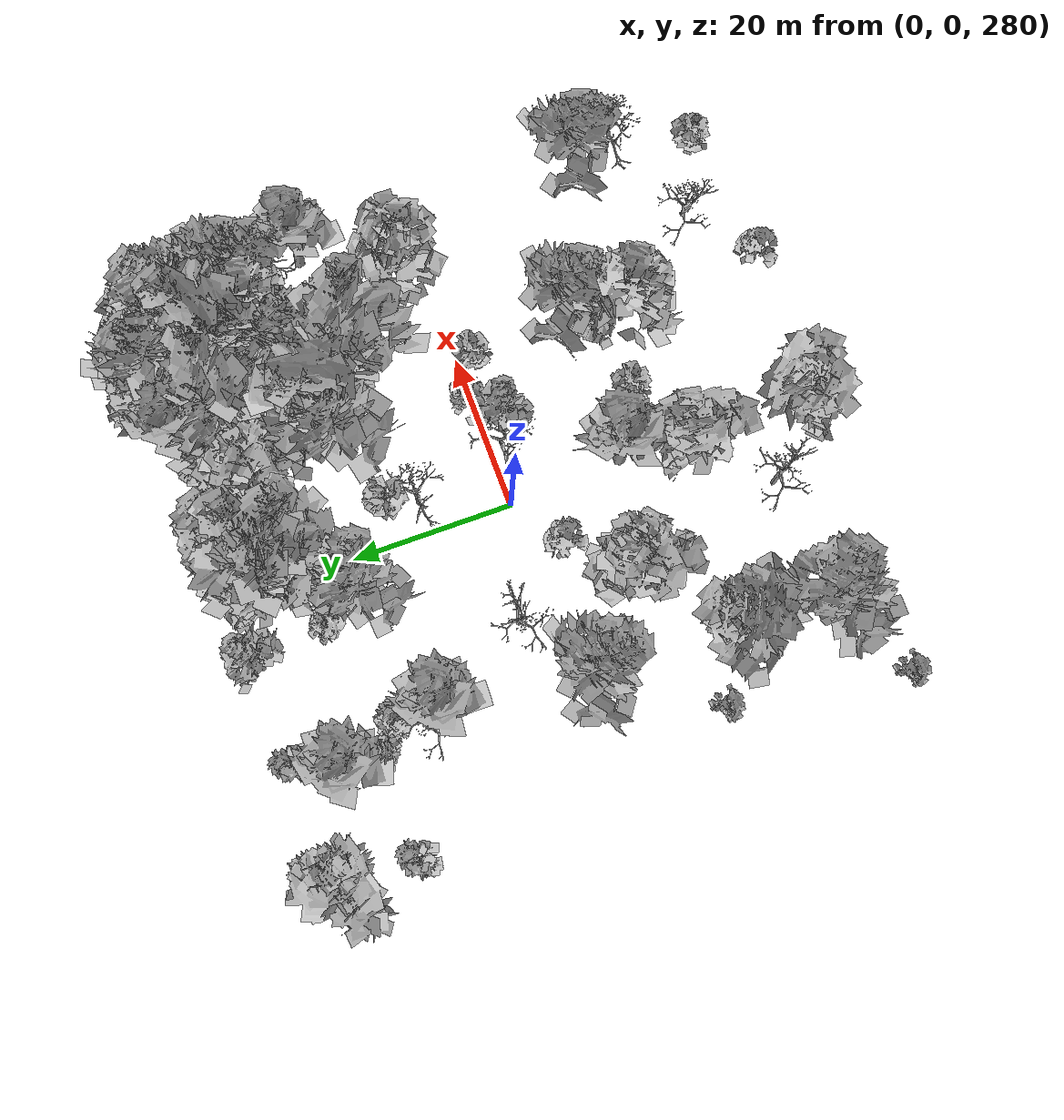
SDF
<sdf version="1.6">
 <world name="default">
  <light name="sun" type="directional">
   <pose>0 0 10 0 -0 0</pose>
   <diffuse>0.8 0.8 0.8 1</diffuse>
   <specular>0.2 0.2 0.2 1</specular>
   <attenuation>
    <range>1000</range>
    <constant>0.9</constant>
    <linear>0.01</linear>
    <quadratic>0.001</quadratic>
   </attenuation>
   <direction>-0.5 0.1 -0.9</direction>
  </light>
  <scene>
   <sky><clouds><speed>12</speed></clouds></sky>
   <ambient>0.4 0.4 0.4 1</ambient>
   <background>0.7 0.7 0.7 1</background>
   <shadows>1</shadows>
  </scene>
  <spherical_coordinates>
   <surface_model>EARTH_WGS84</surface_model>
   <latitude_deg>47.3977</latitude_deg>
   <longitude_deg>8.54559</longitude_deg>
   <elevation>0</elevation>
   <heading_deg>0</heading_deg>
  </spherical_coordinates>
  <physics name="default_physics" default="0" type="ode">
   <ode>
    <solver>
     <type>quick</type>
     <iters>100</iters>
     <sor>1.3</sor>
     <use_dynamic_moi_rescaling>0</use_dynamic_moi_rescaling>
    </solver>
    <constraints>
     <cfm>0</cfm>
     <erp>0.2</erp>
     <contact_max_correcting_vel>100</contact_max_correcting_vel>
     <contact_surface_layer>0.001</contact_surface_layer>
    </constraints>
   </ode>
   <max_step_size>0.002</max_step_size>
   <real_time_factor>1</real_time_factor>
   <real_time_update_rate>500</real_time_update_rate>
  </physics>
  <gravity>0 0 -9.8</gravity>
  <magnetic_field>6e-06 2.3e-05 -4.2e-05</magnetic_field>
  <atmosphere type="adiabatic"/>
  <model name="my_mesh0">
   <pose>35.2814 24.2309 286.199 0 0 -1.35266</pose>
   <static>1</static>
   <link name="body">
    <visual name="visual">
     <geometry><mesh><uri>model://trees/8.dae</uri><scale>1 1 1</scale></mesh></geometry>
    </visual>
    <collision name="collision">
     <geometry><mesh><uri>model://trees/8.dae</uri><scale>1 1 1</scale></mesh></geometry>
    </collision>
   </link>
  </model>
  <model name="my_mesh1">
   <pose>25.9893 24.547 286.061 0 0 -1.36312</pose>
   <static>1</static>
   <link name="body">
    <visual name="visual">
     <geometry><mesh><uri>model://trees/11.dae</uri><scale>1 1 1</scale></mesh></geometry>
    </visual>
    <collision name="collision">
     <geometry><mesh><uri>model://trees/11.dae</uri><scale>1 1 1</scale></mesh></geometry>
    </collision>
   </link>
  </model>
  <model name="my_mesh2">
   <pose>26.6947 33.3691 284.907 0 0 -0.374484</pose>
   <static>1</static>
   <link name="body">
    <visual name="visual">
     <geometry><mesh><uri>model://trees/9.dae</uri><scale>1 1 1</scale></mesh></geometry>
    </visual>
    <collision name="collision">
     <geometry><mesh><uri>model://trees/9.dae</uri><scale>1 1 1</scale></mesh></geometry>
    </collision>
   </link>
  </model>
  <model name="my_mesh3">
   <pose>35.8735 35.6656 284.813 0 0 -0.943137</pose>
   <static>1</static>
   <link name="body">
    <visual name="visual">
     <geometry><mesh><uri>model://trees/3.dae</uri><scale>1 1 1</scale></mesh></geometry>
    </visual>
    <collision name="collision">
     <geometry><mesh><uri>model://trees/3.dae</uri><scale>1 1 1</scale></mesh></geometry>
    </collision>
   </link>
  </model>
  <model name="my_mesh4">
   <pose>29.9982 26.3582 285.894 0 0 -0.917644</pose>
   <static>1</static>
   <link name="body">
    <visual name="visual">
     <geometry><mesh><uri>model://trees/16.dae</uri><scale>1 1 1</scale></mesh></geometry>
    </visual>
    <collision name="collision">
     <geometry><mesh><uri>model://trees/16.dae</uri><scale>1 1 1</scale></mesh></geometry>
    </collision>
   </link>
  </model>
  <model name="my_mesh5">
   <pose>35.5648 21.4159 286.592 0 0 -0.395846</pose>
   <static>1</static>
   <link name="body">
    <visual name="visual">
     <geometry><mesh><uri>model://trees/7.dae</uri><scale>1 1 1</scale></mesh></geometry>
    </visual>
    <collision name="collision">
     <geometry><mesh><uri>model://trees/7.dae</uri><scale>1 1 1</scale></mesh></geometry>
    </collision>
   </link>
  </model>
  <model name="my_mesh6">
   <pose>22.3184 29.2605 285.302 0 0 -0.192127</pose>
   <static>1</static>
   <link name="body">
    <visual name="visual">
     <geometry><mesh><uri>model://trees/5.dae</uri><scale>1 1 1</scale></mesh></geometry>
    </visual>
    <collision name="collision">
     <geometry><mesh><uri>model://trees/5.dae</uri><scale>1 1 1</scale></mesh></geometry>
    </collision>
   </link>
  </model>
  <model name="my_mesh7">
   <pose>26.6985 25.5919 285.991 0 -0 0.772254</pose>
   <static>1</static>
   <link name="body">
    <visual name="visual">
     <geometry><mesh><uri>model://trees/6.dae</uri><scale>1 1 1</scale></mesh></geometry>
    </visual>
    <collision name="collision">
     <geometry><mesh><uri>model://trees/6.dae</uri><scale>1 1 1</scale></mesh></geometry>
    </collision>
   </link>
  </model>
  <model name="my_mesh8">
   <pose>32.3951 28.3632 285.624 0 0 -1.44674</pose>
   <static>1</static>
   <link name="body">
    <visual name="visual">
     <geometry><mesh><uri>model://trees/19.dae</uri><scale>1 1 1</scale></mesh></geometry>
    </visual>
    <collision name="collision">
     <geometry><mesh><uri>model://trees/19.dae</uri><scale>1 1 1</scale></mesh></geometry>
    </collision>
   </link>
  </model>
  <model name="my_mesh9">
   <pose>27.9666 35.7768 284.551 0 -0 0.72914</pose>
   <static>1</static>
   <link name="body">
    <visual name="visual">
     <geometry><mesh><uri>model://trees/11.dae</uri><scale>1 1 1</scale></mesh></geometry>
    </visual>
    <collision name="collision">
     <geometry><mesh><uri>model://trees/11.dae</uri><scale>1 1 1</scale></mesh></geometry>
    </collision>
   </link>
  </model>
  <model name="my_mesh10">
   <pose>14.6456 33.572 284.428 0 0 -0.037381</pose>
   <static>1</static>
   <link name="body">
    <visual name="visual">
     <geometry><mesh><uri>model://trees/5.dae</uri><scale>1 1 1</scale></mesh></geometry>
    </visual>
    <collision name="collision">
     <geometry><mesh><uri>model://trees/5.dae</uri><scale>1 1 1</scale></mesh></geometry>
    </collision>
   </link>
  </model>
  <model name="my_mesh11">
   <pose>25.7968 27.4614 285.607 0 0 -1.07316</pose>
   <static>1</static>
   <link name="body">
    <visual name="visual">
     <geometry><mesh><uri>model://trees/2.dae</uri><scale>1 1 1</scale></mesh></geometry>
    </visual>
    <collision name="collision">
     <geometry><mesh><uri>model://trees/2.dae</uri><scale>1 1 1</scale></mesh></geometry>
    </collision>
   </link>
  </model>
  <model name="my_mesh12">
   <pose>19.0822 35.145 284.169 0 0 -0.471177</pose>
   <static>1</static>
   <link name="body">
    <visual name="visual">
     <geometry><mesh><uri>model://trees/11.dae</uri><scale>1 1 1</scale></mesh></geometry>
    </visual>
    <collision name="collision">
     <geometry><mesh><uri>model://trees/11.dae</uri><scale>1 1 1</scale></mesh></geometry>
    </collision>
   </link>
  </model>
  <model name="my_mesh13">
   <pose>31.7375 30.4248 285.343 0 0 -1.14008</pose>
   <static>1</static>
   <link name="body">
    <visual name="visual">
     <geometry><mesh><uri>model://trees/1.dae</uri><scale>1 1 1</scale></mesh></geometry>
    </visual>
    <collision name="collision">
     <geometry><mesh><uri>model://trees/1.dae</uri><scale>1 1 1</scale></mesh></geometry>
    </collision>
   </link>
  </model>
  <model name="my_mesh14">
   <pose>24.3657 35.463 284.503 0 0 -0.178266</pose>
   <static>1</static>
   <link name="body">
    <visual name="visual">
     <geometry><mesh><uri>model://trees/13.dae</uri><scale>1 1 1</scale></mesh></geometry>
    </visual>
    <collision name="collision">
     <geometry><mesh><uri>model://trees/13.dae</uri><scale>1 1 1</scale></mesh></geometry>
    </collision>
   </link>
  </model>
  <model name="my_mesh15">
   <pose>23.2317 33.8325 284.656 0 -0 0.222402</pose>
   <static>1</static>
   <link name="body">
    <visual name="visual">
     <geometry><mesh><uri>model://trees/5.dae</uri><scale>1 1 1</scale></mesh></geometry>
    </visual>
    <collision name="collision">
     <geometry><mesh><uri>model://trees/5.dae</uri><scale>1 1 1</scale></mesh></geometry>
    </collision>
   </link>
  </model>
  <model name="my_mesh16">
   <pose>31.6833 31.6746 285.154 0 -0 0.387667</pose>
   <static>1</static>
   <link name="body">
    <visual name="visual">
     <geometry><mesh><uri>model://trees/13.dae</uri><scale>1 1 1</scale></mesh></geometry>
    </visual>
    <collision name="collision">
     <geometry><mesh><uri>model://trees/13.dae</uri><scale>1 1 1</scale></mesh></geometry>
    </collision>
   </link>
  </model>
  <model name="my_mesh17">
   <pose>34.7851 33.9559 284.943 0 -0 0.936624</pose>
   <static>1</static>
   <link name="body">
    <visual name="visual">
     <geometry><mesh><uri>model://trees/16.dae</uri><scale>1 1 1</scale></mesh></geometry>
    </visual>
    <collision name="collision">
     <geometry><mesh><uri>model://trees/16.dae</uri><scale>1 1 1</scale></mesh></geometry>
    </collision>
   </link>
  </model>
  <model name="my_mesh18">
   <pose>32.9995 31.4053 285.268 0 -0 0.545935</pose>
   <static>1</static>
   <link name="body">
    <visual name="visual">
     <geometry><mesh><uri>model://trees/5.dae</uri><scale>1 1 1</scale></mesh></geometry>
    </visual>
    <collision name="collision">
     <geometry><mesh><uri>model://trees/5.dae</uri><scale>1 1 1</scale></mesh></geometry>
    </collision>
   </link>
  </model>
  <model name="my_mesh19">
   <pose>26.7852 30.9278 285.197 0 0 -0.397375</pose>
   <static>1</static>
   <link name="body">
    <visual name="visual">
     <geometry><mesh><uri>model://trees/4.dae</uri><scale>1 1 1</scale></mesh></geometry>
    </visual>
    <collision name="collision">
     <geometry><mesh><uri>model://trees/4.dae</uri><scale>1 1 1</scale></mesh></geometry>
    </collision>
   </link>
  </model>
  <model name="my_mesh20">
   <pose>32.1206 33.7505 284.896 0 0 -0.082549</pose>
   <static>1</static>
   <link name="body">
    <visual name="visual">
     <geometry><mesh><uri>model://trees/15.dae</uri><scale>1 1 1</scale></mesh></geometry>
    </visual>
    <collision name="collision">
     <geometry><mesh><uri>model://trees/15.dae</uri><scale>1 1 1</scale></mesh></geometry>
    </collision>
   </link>
  </model>
  <model name="my_mesh21">
   <pose>32.2169 29.3719 285.532 0 0 -0.785972</pose>
   <static>1</static>
   <link name="body">
    <visual name="visual">
     <geometry><mesh><uri>model://trees/6.dae</uri><scale>1 1 1</scale></mesh></geometry>
    </visual>
    <collision name="collision">
     <geometry><mesh><uri>model://trees/6.dae</uri><scale>1 1 1</scale></mesh></geometry>
    </collision>
   </link>
  </model>
  <model name="my_mesh22">
   <pose>21.4738 28.8327 285.059 0 -0 0.037788</pose>
   <static>1</static>
   <link name="body">
    <visual name="visual">
     <geometry><mesh><uri>model://trees/10.dae</uri><scale>1 1 1</scale></mesh></geometry>
    </visual>
    <collision name="collision">
     <geometry><mesh><uri>model://trees/10.dae</uri><scale>1 1 1</scale></mesh></geometry>
    </collision>
   </link>
  </model>
  <model name="my_mesh23">
   <pose>21.0221 23.6482 285.77 0 0 -1.32579</pose>
   <static>1</static>
   <link name="body">
    <visual name="visual">
     <geometry><mesh><uri>model://trees/2.dae</uri><scale>1 1 1</scale></mesh></geometry>
    </visual>
    <collision name="collision">
     <geometry><mesh><uri>model://trees/2.dae</uri><scale>1 1 1</scale></mesh></geometry>
    </collision>
   </link>
  </model>
  <model name="my_mesh24">
   <pose>5.14877 32.0019 284.001 0 -0 0.86252</pose>
   <static>1</static>
   <link name="body">
    <visual name="visual">
     <geometry><mesh><uri>model://trees/8.dae</uri><scale>1 1 1</scale></mesh></geometry>
    </visual>
    <collision name="collision">
     <geometry><mesh><uri>model://trees/8.dae</uri><scale>1 1 1</scale></mesh></geometry>
    </collision>
   </link>
  </model>
  <model name="my_mesh25">
   <pose>33.3918 32.006 285.177 0 -0 0.696299</pose>
   <static>1</static>
   <link name="body">
    <visual name="visual">
     <geometry><mesh><uri>model://trees/17.dae</uri><scale>1 1 1</scale></mesh></geometry>
    </visual>
    <collision name="collision">
     <geometry><mesh><uri>model://trees/17.dae</uri><scale>1 1 1</scale></mesh></geometry>
    </collision>
   </link>
  </model>
  <model name="my_mesh26">
   <pose>29.4832 22.3299 286.383 0 0 -0.591116</pose>
   <static>1</static>
   <link name="body">
    <visual name="visual">
     <geometry><mesh><uri>model://trees/15.dae</uri><scale>1 1 1</scale></mesh></geometry>
    </visual>
    <collision name="collision">
     <geometry><mesh><uri>model://trees/15.dae</uri><scale>1 1 1</scale></mesh></geometry>
    </collision>
   </link>
  </model>
  <model name="my_mesh27">
   <pose>28.7914 27.7093 285.698 0 -0 0.735018</pose>
   <static>1</static>
   <link name="body">
    <visual name="visual">
     <geometry><mesh><uri>model://trees/10.dae</uri><scale>1 1 1</scale></mesh></geometry>
    </visual>
    <collision name="collision">
     <geometry><mesh><uri>model://trees/10.dae</uri><scale>1 1 1</scale></mesh></geometry>
    </collision>
   </link>
  </model>
  <model name="my_mesh28">
   <pose>34.8715 33.0273 285.028 0 0 -1.28982</pose>
   <static>1</static>
   <link name="body">
    <visual name="visual">
     <geometry><mesh><uri>model://trees/12.dae</uri><scale>1 1 1</scale></mesh></geometry>
    </visual>
    <collision name="collision">
     <geometry><mesh><uri>model://trees/12.dae</uri><scale>1 1 1</scale></mesh></geometry>
    </collision>
   </link>
  </model>
  <model name="my_mesh29">
   <pose>26.7833 33.9996 284.806 0 0 -0.206119</pose>
   <static>1</static>
   <link name="body">
    <visual name="visual">
     <geometry><mesh><uri>model://trees/8.dae</uri><scale>1 1 1</scale></mesh></geometry>
    </visual>
    <collision name="collision">
     <geometry><mesh><uri>model://trees/8.dae</uri><scale>1 1 1</scale></mesh></geometry>
    </collision>
   </link>
  </model>
  <model name="my_mesh30">
   <pose>35.4114 33.0507 285.038 0 -0 0.967482</pose>
   <static>1</static>
   <link name="body">
    <visual name="visual">
     <geometry><mesh><uri>model://trees/7.dae</uri><scale>1 1 1</scale></mesh></geometry>
    </visual>
    <collision name="collision">
     <geometry><mesh><uri>model://trees/7.dae</uri><scale>1 1 1</scale></mesh></geometry>
    </collision>
   </link>
  </model>
  <model name="my_mesh31">
   <pose>33.7612 35.9816 284.702 0 0 -0.282736</pose>
   <static>1</static>
   <link name="body">
    <visual name="visual">
     <geometry><mesh><uri>model://trees/19.dae</uri><scale>1 1 1</scale></mesh></geometry>
    </visual>
    <collision name="collision">
     <geometry><mesh><uri>model://trees/19.dae</uri><scale>1 1 1</scale></mesh></geometry>
    </collision>
   </link>
  </model>
  <model name="my_mesh32">
   <pose>35.9414 30.5512 285.432 0 -0 1.03268</pose>
   <static>1</static>
   <link name="body">
    <visual name="visual">
     <geometry><mesh><uri>model://trees/8.dae</uri><scale>1 1 1</scale></mesh></geometry>
    </visual>
    <collision name="collision">
     <geometry><mesh><uri>model://trees/8.dae</uri><scale>1 1 1</scale></mesh></geometry>
    </collision>
   </link>
  </model>
  <model name="my_mesh33">
   <pose>24.1399 20.6463 286.487 0 0 -0.861355</pose>
   <static>1</static>
   <link name="body">
    <visual name="visual">
     <geometry><mesh><uri>model://trees/8.dae</uri><scale>1 1 1</scale></mesh></geometry>
    </visual>
    <collision name="collision">
     <geometry><mesh><uri>model://trees/8.dae</uri><scale>1 1 1</scale></mesh></geometry>
    </collision>
   </link>
  </model>
  <model name="my_mesh34">
   <pose>-8.90471 33.9314 283.475 0 -0 0.884598</pose>
   <static>1</static>
   <link name="body">
    <visual name="visual">
     <geometry><mesh><uri>model://trees/7.dae</uri><scale>1 1 1</scale></mesh></geometry>
    </visual>
    <collision name="collision">
     <geometry><mesh><uri>model://trees/7.dae</uri><scale>1 1 1</scale></mesh></geometry>
    </collision>
   </link>
  </model>
  <model name="my_mesh35">
   <pose>32.1638 32.631 285.056 0 0 -0.176489</pose>
   <static>1</static>
   <link name="body">
    <visual name="visual">
     <geometry><mesh><uri>model://trees/7.dae</uri><scale>1 1 1</scale></mesh></geometry>
    </visual>
    <collision name="collision">
     <geometry><mesh><uri>model://trees/7.dae</uri><scale>1 1 1</scale></mesh></geometry>
    </collision>
   </link>
  </model>
  <model name="my_mesh36">
   <pose>1.30907 29.5735 284.473 0 -0 0.531995</pose>
   <static>1</static>
   <link name="body">
    <visual name="visual">
     <geometry><mesh><uri>model://trees/10.dae</uri><scale>1 1 1</scale></mesh></geometry>
    </visual>
    <collision name="collision">
     <geometry><mesh><uri>model://trees/10.dae</uri><scale>1 1 1</scale></mesh></geometry>
    </collision>
   </link>
  </model>
  <model name="my_mesh37">
   <pose>-9.26475 -2.49064 291.874 0 0 -0.92235</pose>
   <static>1</static>
   <link name="body">
    <visual name="visual">
     <geometry><mesh><uri>model://trees/1.dae</uri><scale>1 1 1</scale></mesh></geometry>
    </visual>
    <collision name="collision">
     <geometry><mesh><uri>model://trees/1.dae</uri><scale>1 1 1</scale></mesh></geometry>
    </collision>
   </link>
  </model>
  <model name="my_mesh38">
   <pose>20.8739 25.8146 285.363 0 0 -1.21921</pose>
   <static>1</static>
   <link name="body">
    <visual name="visual">
     <geometry><mesh><uri>model://trees/1.dae</uri><scale>1 1 1</scale></mesh></geometry>
    </visual>
    <collision name="collision">
     <geometry><mesh><uri>model://trees/1.dae</uri><scale>1 1 1</scale></mesh></geometry>
    </collision>
   </link>
  </model>
  <model name="my_mesh39">
   <pose>4.59459 -0.314465 290.47 0 0 -1.49769</pose>
   <static>1</static>
   <link name="body">
    <visual name="visual">
     <geometry><mesh><uri>model://trees/19.dae</uri><scale>1 1 1</scale></mesh></geometry>
    </visual>
    <collision name="collision">
     <geometry><mesh><uri>model://trees/19.dae</uri><scale>1 1 1</scale></mesh></geometry>
    </collision>
   </link>
  </model>
  <model name="my_mesh40">
   <pose>1.10641 34.6875 283.592 0 0 -1.00794</pose>
   <static>1</static>
   <link name="body">
    <visual name="visual">
     <geometry><mesh><uri>model://trees/7.dae</uri><scale>1 1 1</scale></mesh></geometry>
    </visual>
    <collision name="collision">
     <geometry><mesh><uri>model://trees/7.dae</uri><scale>1 1 1</scale></mesh></geometry>
    </collision>
   </link>
  </model>
  <model name="my_mesh41">
   <pose>2.9376 28.2819 284.733 0 0 -1.40704</pose>
   <static>1</static>
   <link name="body">
    <visual name="visual">
     <geometry><mesh><uri>model://trees/1.dae</uri><scale>1 1 1</scale></mesh></geometry>
    </visual>
    <collision name="collision">
     <geometry><mesh><uri>model://trees/1.dae</uri><scale>1 1 1</scale></mesh></geometry>
    </collision>
   </link>
  </model>
  <model name="my_mesh42">
   <pose>11.6367 17.2982 286.936 0 -0 0.047562</pose>
   <static>1</static>
   <link name="body">
    <visual name="visual">
     <geometry><mesh><uri>model://trees/9.dae</uri><scale>1 1 1</scale></mesh></geometry>
    </visual>
    <collision name="collision">
     <geometry><mesh><uri>model://trees/9.dae</uri><scale>1 1 1</scale></mesh></geometry>
    </collision>
   </link>
  </model>
  <model name="my_mesh43">
   <pose>27.5894 20.4526 286.726 0 -0 0.670339</pose>
   <static>1</static>
   <link name="body">
    <visual name="visual">
     <geometry><mesh><uri>model://trees/1.dae</uri><scale>1 1 1</scale></mesh></geometry>
    </visual>
    <collision name="collision">
     <geometry><mesh><uri>model://trees/1.dae</uri><scale>1 1 1</scale></mesh></geometry>
    </collision>
   </link>
  </model>
  <model name="my_mesh44">
   <pose>15.6366 -0.438332 289.965 0 -0 1.21182</pose>
   <static>1</static>
   <link name="body">
    <visual name="visual">
     <geometry><mesh><uri>model://trees/0.dae</uri><scale>1 1 1</scale></mesh></geometry>
    </visual>
    <collision name="collision">
     <geometry><mesh><uri>model://trees/0.dae</uri><scale>1 1 1</scale></mesh></geometry>
    </collision>
   </link>
  </model>
  <model name="my_mesh45">
   <pose>6.27578 -1.14117 290.721 0 0 -0.210782</pose>
   <static>1</static>
   <link name="body">
    <visual name="visual">
     <geometry><mesh><uri>model://trees/7.dae</uri><scale>1 1 1</scale></mesh></geometry>
    </visual>
    <collision name="collision">
     <geometry><mesh><uri>model://trees/7.dae</uri><scale>1 1 1</scale></mesh></geometry>
    </collision>
   </link>
  </model>
  <model name="my_mesh46">
   <pose>18.1835 29.0892 285.091 0 -0 0.605896</pose>
   <static>1</static>
   <link name="body">
    <visual name="visual">
     <geometry><mesh><uri>model://trees/16.dae</uri><scale>1 1 1</scale></mesh></geometry>
    </visual>
    <collision name="collision">
     <geometry><mesh><uri>model://trees/16.dae</uri><scale>1 1 1</scale></mesh></geometry>
    </collision>
   </link>
  </model>
  <model name="my_mesh47">
   <pose>0.629843 28.5832 284.698 0 0 -0.674722</pose>
   <static>1</static>
   <link name="body">
    <visual name="visual">
     <geometry><mesh><uri>model://trees/10.dae</uri><scale>1 1 1</scale></mesh></geometry>
    </visual>
    <collision name="collision">
     <geometry><mesh><uri>model://trees/10.dae</uri><scale>1 1 1</scale></mesh></geometry>
    </collision>
   </link>
  </model>
  <model name="my_mesh48">
   <pose>33.122 -23.5933 294.194 0 0 -1.38818</pose>
   <static>1</static>
   <link name="body">
    <visual name="visual">
     <geometry><mesh><uri>model://trees/16.dae</uri><scale>1 1 1</scale></mesh></geometry>
    </visual>
    <collision name="collision">
     <geometry><mesh><uri>model://trees/16.dae</uri><scale>1 1 1</scale></mesh></geometry>
    </collision>
   </link>
  </model>
  <model name="my_mesh49">
   <pose>34.456 19.5318 286.817 0 0 -0.217776</pose>
   <static>1</static>
   <link name="body">
    <visual name="visual">
     <geometry><mesh><uri>model://trees/16.dae</uri><scale>1 1 1</scale></mesh></geometry>
    </visual>
    <collision name="collision">
     <geometry><mesh><uri>model://trees/16.dae</uri><scale>1 1 1</scale></mesh></geometry>
    </collision>
   </link>
  </model>
  <model name="my_mesh50">
   <pose>33.5982 20.8285 286.658 0 0 -1.25058</pose>
   <static>1</static>
   <link name="body">
    <visual name="visual">
     <geometry><mesh><uri>model://trees/8.dae</uri><scale>1 1 1</scale></mesh></geometry>
    </visual>
    <collision name="collision">
     <geometry><mesh><uri>model://trees/8.dae</uri><scale>1 1 1</scale></mesh></geometry>
    </collision>
   </link>
  </model>
  <model name="my_mesh51">
   <pose>12.9926 -14.221 293.292 0 -0 1.40514</pose>
   <static>1</static>
   <link name="body">
    <visual name="visual">
     <geometry><mesh><uri>model://trees/7.dae</uri><scale>1 1 1</scale></mesh></geometry>
    </visual>
    <collision name="collision">
     <geometry><mesh><uri>model://trees/7.dae</uri><scale>1 1 1</scale></mesh></geometry>
    </collision>
   </link>
  </model>
  <model name="my_mesh52">
   <pose>13.1944 -17.8634 293.849 0 0 -0.997786</pose>
   <static>1</static>
   <link name="body">
    <visual name="visual">
     <geometry><mesh><uri>model://trees/15.dae</uri><scale>1 1 1</scale></mesh></geometry>
    </visual>
    <collision name="collision">
     <geometry><mesh><uri>model://trees/15.dae</uri><scale>1 1 1</scale></mesh></geometry>
    </collision>
   </link>
  </model>
  <model name="my_mesh53">
   <pose>3.04472 14.4186 287.398 0 0 -0.028935</pose>
   <static>1</static>
   <link name="body">
    <visual name="visual">
     <geometry><mesh><uri>model://trees/5.dae</uri><scale>1 1 1</scale></mesh></geometry>
    </visual>
    <collision name="collision">
     <geometry><mesh><uri>model://trees/5.dae</uri><scale>1 1 1</scale></mesh></geometry>
    </collision>
   </link>
  </model>
  <model name="my_mesh54">
   <pose>10.8614 1.72229 289.661 0 -0 0.684263</pose>
   <static>1</static>
   <link name="body">
    <visual name="visual">
     <geometry><mesh><uri>model://trees/6.dae</uri><scale>1 1 1</scale></mesh></geometry>
    </visual>
    <collision name="collision">
     <geometry><mesh><uri>model://trees/6.dae</uri><scale>1 1 1</scale></mesh></geometry>
    </collision>
   </link>
  </model>
  <model name="my_mesh55">
   <pose>-15.453 4.9437 288.752 0 -0 1.55766</pose>
   <static>1</static>
   <link name="body">
    <visual name="visual">
     <geometry><mesh><uri>model://trees/18.dae</uri><scale>1 1 1</scale></mesh></geometry>
    </visual>
    <collision name="collision">
     <geometry><mesh><uri>model://trees/18.dae</uri><scale>1 1 1</scale></mesh></geometry>
    </collision>
   </link>
  </model>
  <model name="my_mesh56">
   <pose>-4.28438 -19.58 295.934 0 -0 0.051026</pose>
   <static>1</static>
   <link name="body">
    <visual name="visual">
     <geometry><mesh><uri>model://trees/13.dae</uri><scale>1 1 1</scale></mesh></geometry>
    </visual>
    <collision name="collision">
     <geometry><mesh><uri>model://trees/13.dae</uri><scale>1 1 1</scale></mesh></geometry>
    </collision>
   </link>
  </model>
  <model name="my_mesh57">
   <pose>20.7553 26.5619 285.145 0 0 -1.07076</pose>
   <static>1</static>
   <link name="body">
    <visual name="visual">
     <geometry><mesh><uri>model://trees/8.dae</uri><scale>1 1 1</scale></mesh></geometry>
    </visual>
    <collision name="collision">
     <geometry><mesh><uri>model://trees/8.dae</uri><scale>1 1 1</scale></mesh></geometry>
    </collision>
   </link>
  </model>
  <model name="my_mesh58">
   <pose>32.7302 -19.3288 293.046 0 0 -1.14315</pose>
   <static>1</static>
   <link name="body">
    <visual name="visual">
     <geometry><mesh><uri>model://trees/8.dae</uri><scale>1 1 1</scale></mesh></geometry>
    </visual>
    <collision name="collision">
     <geometry><mesh><uri>model://trees/8.dae</uri><scale>1 1 1</scale></mesh></geometry>
    </collision>
   </link>
  </model>
  <model name="my_mesh59">
   <pose>15.9062 17.7157 286.925 0 -0 1.52321</pose>
   <static>1</static>
   <link name="body">
    <visual name="visual">
     <geometry><mesh><uri>model://trees/10.dae</uri><scale>1 1 1</scale></mesh></geometry>
    </visual>
    <collision name="collision">
     <geometry><mesh><uri>model://trees/10.dae</uri><scale>1 1 1</scale></mesh></geometry>
    </collision>
   </link>
  </model>
  <model name="my_mesh60">
   <pose>29.5148 3.84754 289.311 0 -0 1.25591</pose>
   <static>1</static>
   <link name="body">
    <visual name="visual">
     <geometry><mesh><uri>model://trees/14.dae</uri><scale>1 1 1</scale></mesh></geometry>
    </visual>
    <collision name="collision">
     <geometry><mesh><uri>model://trees/14.dae</uri><scale>1 1 1</scale></mesh></geometry>
    </collision>
   </link>
  </model>
  <model name="my_mesh61">
   <pose>11.0528 27.6045 285.064 0 0 -0.60686</pose>
   <static>1</static>
   <link name="body">
    <visual name="visual">
     <geometry><mesh><uri>model://trees/14.dae</uri><scale>1 1 1</scale></mesh></geometry>
    </visual>
    <collision name="collision">
     <geometry><mesh><uri>model://trees/14.dae</uri><scale>1 1 1</scale></mesh></geometry>
    </collision>
   </link>
  </model>
  <model name="my_mesh62">
   <pose>26.6184 25.66 285.991 0 0 -0.650014</pose>
   <static>1</static>
   <link name="body">
    <visual name="visual">
     <geometry><mesh><uri>model://trees/11.dae</uri><scale>1 1 1</scale></mesh></geometry>
    </visual>
    <collision name="collision">
     <geometry><mesh><uri>model://trees/11.dae</uri><scale>1 1 1</scale></mesh></geometry>
    </collision>
   </link>
  </model>
  <model name="my_mesh63">
   <pose>4.04221 -15.0918 295.115 0 -0 0.850692</pose>
   <static>1</static>
   <link name="body">
    <visual name="visual">
     <geometry><mesh><uri>model://trees/1.dae</uri><scale>1 1 1</scale></mesh></geometry>
    </visual>
    <collision name="collision">
     <geometry><mesh><uri>model://trees/1.dae</uri><scale>1 1 1</scale></mesh></geometry>
    </collision>
   </link>
  </model>
  <model name="my_mesh64">
   <pose>27.3261 10.7135 288.294 0 -0 0.639781</pose>
   <static>1</static>
   <link name="body">
    <visual name="visual">
     <geometry><mesh><uri>model://trees/19.dae</uri><scale>1 1 1</scale></mesh></geometry>
    </visual>
    <collision name="collision">
     <geometry><mesh><uri>model://trees/19.dae</uri><scale>1 1 1</scale></mesh></geometry>
    </collision>
   </link>
  </model>
  <model name="my_mesh65">
   <pose>1.79912 10.8947 288.044 0 0 -1.42806</pose>
   <static>1</static>
   <link name="body">
    <visual name="visual">
     <geometry><mesh><uri>model://trees/17.dae</uri><scale>1 1 1</scale></mesh></geometry>
    </visual>
    <collision name="collision">
     <geometry><mesh><uri>model://trees/17.dae</uri><scale>1 1 1</scale></mesh></geometry>
    </collision>
   </link>
  </model>
  <model name="my_mesh66">
   <pose>-1.69919 28.1499 284.542 0 0 -0.446095</pose>
   <static>1</static>
   <link name="body">
    <visual name="visual">
     <geometry><mesh><uri>model://trees/14.dae</uri><scale>1 1 1</scale></mesh></geometry>
    </visual>
    <collision name="collision">
     <geometry><mesh><uri>model://trees/14.dae</uri><scale>1 1 1</scale></mesh></geometry>
    </collision>
   </link>
  </model>
  <model name="my_mesh67">
   <pose>15.435 -11.8725 292.28 0 0 -1.44646</pose>
   <static>1</static>
   <link name="body">
    <visual name="visual">
     <geometry><mesh><uri>model://trees/8.dae</uri><scale>1 1 1</scale></mesh></geometry>
    </visual>
    <collision name="collision">
     <geometry><mesh><uri>model://trees/8.dae</uri><scale>1 1 1</scale></mesh></geometry>
    </collision>
   </link>
  </model>
  <model name="my_mesh68">
   <pose>-1.11727 30.8179 284.067 0 -0 0.376492</pose>
   <static>1</static>
   <link name="body">
    <visual name="visual">
     <geometry><mesh><uri>model://trees/13.dae</uri><scale>1 1 1</scale></mesh></geometry>
    </visual>
    <collision name="collision">
     <geometry><mesh><uri>model://trees/13.dae</uri><scale>1 1 1</scale></mesh></geometry>
    </collision>
   </link>
  </model>
  <model name="my_mesh69">
   <pose>-6.14688 20.2316 285.94 0 0 -0.115828</pose>
   <static>1</static>
   <link name="body">
    <visual name="visual">
     <geometry><mesh><uri>model://trees/8.dae</uri><scale>1 1 1</scale></mesh></geometry>
    </visual>
    <collision name="collision">
     <geometry><mesh><uri>model://trees/8.dae</uri><scale>1 1 1</scale></mesh></geometry>
    </collision>
   </link>
  </model>
  <model name="my_mesh70">
   <pose>19.2235 31.9032 284.343 0 -0 0.300618</pose>
   <static>1</static>
   <link name="body">
    <visual name="visual">
     <geometry><mesh><uri>model://trees/19.dae</uri><scale>1 1 1</scale></mesh></geometry>
    </visual>
    <collision name="collision">
     <geometry><mesh><uri>model://trees/19.dae</uri><scale>1 1 1</scale></mesh></geometry>
    </collision>
   </link>
  </model>
  <model name="my_mesh71">
   <pose>35.5808 14.5293 287.531 0 0 -0.142142</pose>
   <static>1</static>
   <link name="body">
    <visual name="visual">
     <geometry><mesh><uri>model://trees/11.dae</uri><scale>1 1 1</scale></mesh></geometry>
    </visual>
    <collision name="collision">
     <geometry><mesh><uri>model://trees/11.dae</uri><scale>1 1 1</scale></mesh></geometry>
    </collision>
   </link>
  </model>
  <model name="my_mesh72">
   <pose>-26.4756 -26.4308 295.159 0 0 -0.580017</pose>
   <static>1</static>
   <link name="body">
    <visual name="visual">
     <geometry><mesh><uri>model://trees/8.dae</uri><scale>1 1 1</scale></mesh></geometry>
    </visual>
    <collision name="collision">
     <geometry><mesh><uri>model://trees/8.dae</uri><scale>1 1 1</scale></mesh></geometry>
    </collision>
   </link>
  </model>
  <model name="my_mesh73">
   <pose>26.4347 17.1584 287.283 0 0 -1.50094</pose>
   <static>1</static>
   <link name="body">
    <visual name="visual">
     <geometry><mesh><uri>model://trees/1.dae</uri><scale>1 1 1</scale></mesh></geometry>
    </visual>
    <collision name="collision">
     <geometry><mesh><uri>model://trees/1.dae</uri><scale>1 1 1</scale></mesh></geometry>
    </collision>
   </link>
  </model>
  <model name="my_mesh74">
   <pose>-15.5693 -8.98277 291.792 0 0 -0.580491</pose>
   <static>1</static>
   <link name="body">
    <visual name="visual">
     <geometry><mesh><uri>model://trees/14.dae</uri><scale>1 1 1</scale></mesh></geometry>
    </visual>
    <collision name="collision">
     <geometry><mesh><uri>model://trees/14.dae</uri><scale>1 1 1</scale></mesh></geometry>
    </collision>
   </link>
  </model>
  <model name="my_mesh75">
   <pose>21.2741 12.5341 287.445 0 0 -0.345833</pose>
   <static>1</static>
   <link name="body">
    <visual name="visual">
     <geometry><mesh><uri>model://trees/10.dae</uri><scale>1 1 1</scale></mesh></geometry>
    </visual>
    <collision name="collision">
     <geometry><mesh><uri>model://trees/10.dae</uri><scale>1 1 1</scale></mesh></geometry>
    </collision>
   </link>
  </model>
  <model name="my_mesh76">
   <pose>-35.6235 32.5917 281.944 0 0 -1.22238</pose>
   <static>1</static>
   <link name="body">
    <visual name="visual">
     <geometry><mesh><uri>model://trees/13.dae</uri><scale>1 1 1</scale></mesh></geometry>
    </visual>
    <collision name="collision">
     <geometry><mesh><uri>model://trees/13.dae</uri><scale>1 1 1</scale></mesh></geometry>
    </collision>
   </link>
  </model>
  <model name="my_mesh77">
   <pose>-23.9308 28.512 283.685 0 0 -0.51134</pose>
   <static>1</static>
   <link name="body">
    <visual name="visual">
     <geometry><mesh><uri>model://trees/11.dae</uri><scale>1 1 1</scale></mesh></geometry>
    </visual>
    <collision name="collision">
     <geometry><mesh><uri>model://trees/11.dae</uri><scale>1 1 1</scale></mesh></geometry>
    </collision>
   </link>
  </model>
  <model name="my_mesh78">
   <pose>22.6671 -29.144 295.079 0 -0 0.525914</pose>
   <static>1</static>
   <link name="body">
    <visual name="visual">
     <geometry><mesh><uri>model://trees/18.dae</uri><scale>1 1 1</scale></mesh></geometry>
    </visual>
    <collision name="collision">
     <geometry><mesh><uri>model://trees/18.dae</uri><scale>1 1 1</scale></mesh></geometry>
    </collision>
   </link>
  </model>
  <model name="my_mesh79">
   <pose>13.7478 -33.871 297.342 0 0 -1.45259</pose>
   <static>1</static>
   <link name="body">
    <visual name="visual">
     <geometry><mesh><uri>model://trees/1.dae</uri><scale>1 1 1</scale></mesh></geometry>
    </visual>
    <collision name="collision">
     <geometry><mesh><uri>model://trees/1.dae</uri><scale>1 1 1</scale></mesh></geometry>
    </collision>
   </link>
  </model>
  <model name="my_mesh80">
   <pose>35.879 26.5759 285.832 0 -0 0.447833</pose>
   <static>1</static>
   <link name="body">
    <visual name="visual">
     <geometry><mesh><uri>model://trees/18.dae</uri><scale>1 1 1</scale></mesh></geometry>
    </visual>
    <collision name="collision">
     <geometry><mesh><uri>model://trees/18.dae</uri><scale>1 1 1</scale></mesh></geometry>
    </collision>
   </link>
  </model>
  <model name="my_mesh81">
   <pose>-23.54 23.4555 284.547 0 -0 1.49116</pose>
   <static>1</static>
   <link name="body">
    <visual name="visual">
     <geometry><mesh><uri>model://trees/6.dae</uri><scale>1 1 1</scale></mesh></geometry>
    </visual>
    <collision name="collision">
     <geometry><mesh><uri>model://trees/6.dae</uri><scale>1 1 1</scale></mesh></geometry>
    </collision>
   </link>
  </model>
  <model name="my_mesh82">
   <pose>12.6496 29.4597 284.819 0 0 -0.318549</pose>
   <static>1</static>
   <link name="body">
    <visual name="visual">
     <geometry><mesh><uri>model://trees/19.dae</uri><scale>1 1 1</scale></mesh></geometry>
    </visual>
    <collision name="collision">
     <geometry><mesh><uri>model://trees/19.dae</uri><scale>1 1 1</scale></mesh></geometry>
    </collision>
   </link>
  </model>
  <model name="my_mesh83">
   <pose>16.4415 14.0047 287.494 0 0 -1.35856</pose>
   <static>1</static>
   <link name="body">
    <visual name="visual">
     <geometry><mesh><uri>model://trees/8.dae</uri><scale>1 1 1</scale></mesh></geometry>
    </visual>
    <collision name="collision">
     <geometry><mesh><uri>model://trees/8.dae</uri><scale>1 1 1</scale></mesh></geometry>
    </collision>
   </link>
  </model>
  <model name="my_mesh84">
   <pose>-21.171 16.438 285.934 0 0 -0.237786</pose>
   <static>1</static>
   <link name="body">
    <visual name="visual">
     <geometry><mesh><uri>model://trees/11.dae</uri><scale>1 1 1</scale></mesh></geometry>
    </visual>
    <collision name="collision">
     <geometry><mesh><uri>model://trees/11.dae</uri><scale>1 1 1</scale></mesh></geometry>
    </collision>
   </link>
  </model>
  <model name="my_mesh85">
   <pose>-21.3151 33.6798 283.01 0 -0 0.746305</pose>
   <static>1</static>
   <link name="body">
    <visual name="visual">
     <geometry><mesh><uri>model://trees/4.dae</uri><scale>1 1 1</scale></mesh></geometry>
    </visual>
    <collision name="collision">
     <geometry><mesh><uri>model://trees/4.dae</uri><scale>1 1 1</scale></mesh></geometry>
    </collision>
   </link>
  </model>
  <model name="my_mesh86">
   <pose>-35.7983 23.7405 283.25 0 -0 0.394231</pose>
   <static>1</static>
   <link name="body">
    <visual name="visual">
     <geometry><mesh><uri>model://trees/4.dae</uri><scale>1 1 1</scale></mesh></geometry>
    </visual>
    <collision name="collision">
     <geometry><mesh><uri>model://trees/4.dae</uri><scale>1 1 1</scale></mesh></geometry>
    </collision>
   </link>
  </model>
  <model name="my_mesh87">
   <pose>-22.6559 18.0432 285.539 0 -0 1.16406</pose>
   <static>1</static>
   <link name="body">
    <visual name="visual">
     <geometry><mesh><uri>model://trees/17.dae</uri><scale>1 1 1</scale></mesh></geometry>
    </visual>
    <collision name="collision">
     <geometry><mesh><uri>model://trees/17.dae</uri><scale>1 1 1</scale></mesh></geometry>
    </collision>
   </link>
  </model>
  <model name="my_mesh88">
   <pose>-20.7606 21.6288 285.047 0 -0 0.046822</pose>
   <static>1</static>
   <link name="body">
    <visual name="visual">
     <geometry><mesh><uri>model://trees/0.dae</uri><scale>1 1 1</scale></mesh></geometry>
    </visual>
    <collision name="collision">
     <geometry><mesh><uri>model://trees/0.dae</uri><scale>1 1 1</scale></mesh></geometry>
    </collision>
   </link>
  </model>
  <model name="my_mesh89">
   <pose>30.3228 -32.6729 296.065 0 -0 0.620448</pose>
   <static>1</static>
   <link name="body">
    <visual name="visual">
     <geometry><mesh><uri>model://trees/1.dae</uri><scale>1 1 1</scale></mesh></geometry>
    </visual>
    <collision name="collision">
     <geometry><mesh><uri>model://trees/1.dae</uri><scale>1 1 1</scale></mesh></geometry>
    </collision>
   </link>
  </model>
  <model name="my_mesh90">
   <pose>-24.5573 -0.931163 289.099 0 0 -1.24426</pose>
   <static>1</static>
   <link name="body">
    <visual name="visual">
     <geometry><mesh><uri>model://trees/8.dae</uri><scale>1 1 1</scale></mesh></geometry>
    </visual>
    <collision name="collision">
     <geometry><mesh><uri>model://trees/8.dae</uri><scale>1 1 1</scale></mesh></geometry>
    </collision>
   </link>
  </model>
  <model name="my_mesh91">
   <pose>-24.3231 -17.2169 293.016 0 -0 1.14388</pose>
   <static>1</static>
   <link name="body">
    <visual name="visual">
     <geometry><mesh><uri>model://trees/8.dae</uri><scale>1 1 1</scale></mesh></geometry>
    </visual>
    <collision name="collision">
     <geometry><mesh><uri>model://trees/8.dae</uri><scale>1 1 1</scale></mesh></geometry>
    </collision>
   </link>
  </model>
  <model name="my_mesh92">
   <pose>-11.7204 -25.5422 297.044 0 -0 0.596696</pose>
   <static>1</static>
   <link name="body">
    <visual name="visual">
     <geometry><mesh><uri>model://trees/17.dae</uri><scale>1 1 1</scale></mesh></geometry>
    </visual>
    <collision name="collision">
     <geometry><mesh><uri>model://trees/17.dae</uri><scale>1 1 1</scale></mesh></geometry>
    </collision>
   </link>
  </model>
  <model name="my_mesh93">
   <pose>-35.4345 -30.7882 294.545 0 -0 1.06429</pose>
   <static>1</static>
   <link name="body">
    <visual name="visual">
     <geometry><mesh><uri>model://trees/3.dae</uri><scale>1 1 1</scale></mesh></geometry>
    </visual>
    <collision name="collision">
     <geometry><mesh><uri>model://trees/3.dae</uri><scale>1 1 1</scale></mesh></geometry>
    </collision>
   </link>
  </model>
  <model name="my_mesh94">
   <pose>-2.87515 -11.3667 294.458 0 0 -0.120923</pose>
   <static>1</static>
   <link name="body">
    <visual name="visual">
     <geometry><mesh><uri>model://trees/11.dae</uri><scale>1 1 1</scale></mesh></geometry>
    </visual>
    <collision name="collision">
     <geometry><mesh><uri>model://trees/11.dae</uri><scale>1 1 1</scale></mesh></geometry>
    </collision>
   </link>
  </model>
  <model name="my_mesh95">
   <pose>-8.47482 25.5407 285.007 0 -0 0.096754</pose>
   <static>1</static>
   <link name="body">
    <visual name="visual">
     <geometry><mesh><uri>model://trees/2.dae</uri><scale>1 1 1</scale></mesh></geometry>
    </visual>
    <collision name="collision">
     <geometry><mesh><uri>model://trees/2.dae</uri><scale>1 1 1</scale></mesh></geometry>
    </collision>
   </link>
  </model>
  <model name="my_mesh96">
   <pose>-32.1413 -12.1396 290.938 0 -0 1.05318</pose>
   <static>1</static>
   <link name="body">
    <visual name="visual">
     <geometry><mesh><uri>model://trees/3.dae</uri><scale>1 1 1</scale></mesh></geometry>
    </visual>
    <collision name="collision">
     <geometry><mesh><uri>model://trees/3.dae</uri><scale>1 1 1</scale></mesh></geometry>
    </collision>
   </link>
  </model>
  <model name="my_mesh97">
   <pose>17.8714 29.2819 285.107 0 -0 0.365191</pose>
   <static>1</static>
   <link name="body">
    <visual name="visual">
     <geometry><mesh><uri>model://trees/8.dae</uri><scale>1 1 1</scale></mesh></geometry>
    </visual>
    <collision name="collision">
     <geometry><mesh><uri>model://trees/8.dae</uri><scale>1 1 1</scale></mesh></geometry>
    </collision>
   </link>
  </model>
  <model name="my_mesh98">
   <pose>-4.03409 -31.4062 298.194 0 -0 0.973909</pose>
   <static>1</static>
   <link name="body">
    <visual name="visual">
     <geometry><mesh><uri>model://trees/13.dae</uri><scale>1 1 1</scale></mesh></geometry>
    </visual>
    <collision name="collision">
     <geometry><mesh><uri>model://trees/13.dae</uri><scale>1 1 1</scale></mesh></geometry>
    </collision>
   </link>
  </model>
 </world>
</sdf>
